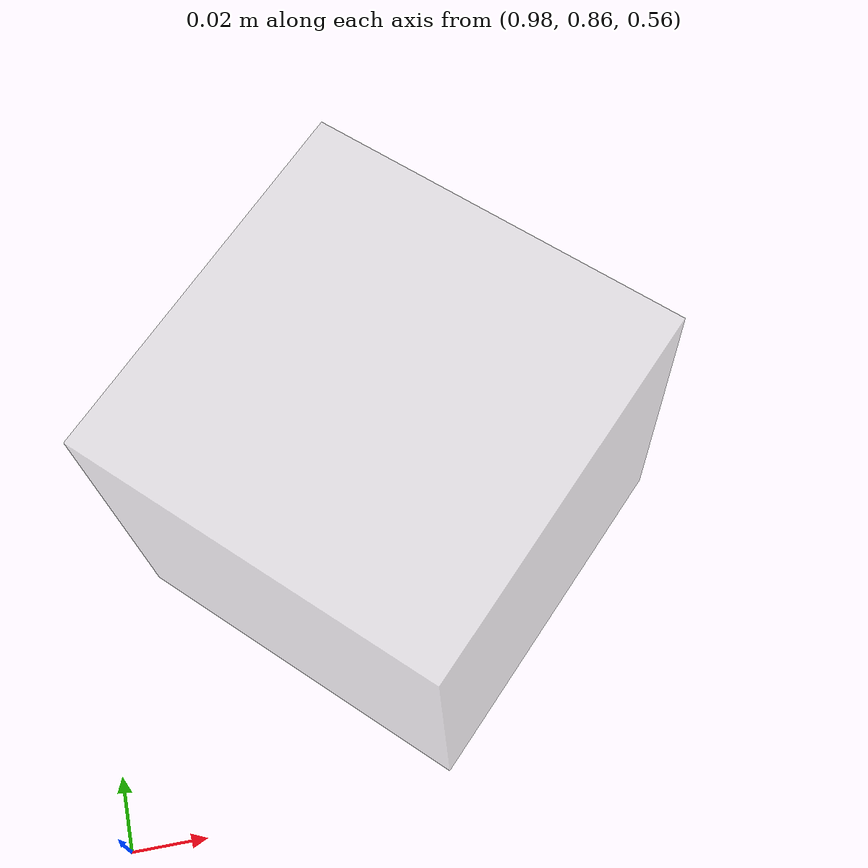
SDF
<sdf version="1.6">
 <world name="default">
  <model name="ground_plane">
   <static>1</static>
   <link name="link">
    <collision name="collision">
     <geometry><plane><normal>0 0 1</normal><size>100 100</size></plane></geometry>
     <surface><friction><ode><mu>100</mu><mu2>50</mu2></ode></friction></surface>
    </collision>
    <visual name="visual">
     <cast_shadows>0</cast_shadows>
     <geometry><plane><normal>0 0 1</normal><size>100 100</size></plane></geometry>
     <material>
      <script><uri>file://media/materials/scripts/gazebo.material</uri><name>Gazebo/White</name></script>
     </material>
    </visual>
   </link>
  </model>
  <model name="yarp_camera">
   <pose>1.06293 0.935146 0.606963 0.027048 0.070242 -2.36133</pose>
   <static>0</static>
   <link name="link">
    <gravity>0</gravity>
    <visual name="visual">
     <geometry><box><size>0.1 0.1 0.1</size></box></geometry>
     <transparency>0.6</transparency>
    </visual>
    <sensor name="yarp_camera_sensor" type="camera">
     <camera name="__default__">
      <horizontal_fov>0.5</horizontal_fov>
      <image><width>1080</width><height>1920</height></image>
      <clip><near>0.1</near><far>100</far></clip>
     </camera>
     <always_on>1</always_on>
     <update_rate>30</update_rate>
     <visualize>1</visualize>
     <plugin name="yarp_camera_control" filename="libyarp_camera_control.so"/>
    </sensor>
    <inertial>
     <inertia><ixx>1</ixx><ixy>0</ixy><ixz>0</ixz><iyy>1</iyy><iyz>0</iyz><izz>1</izz></inertia>
     <mass>1</mass>
    </inertial>
   </link>
   <plugin name="yarp_model_move" filename="libyarp_model_move.so"/>
  </model>
 </world>
</sdf>
